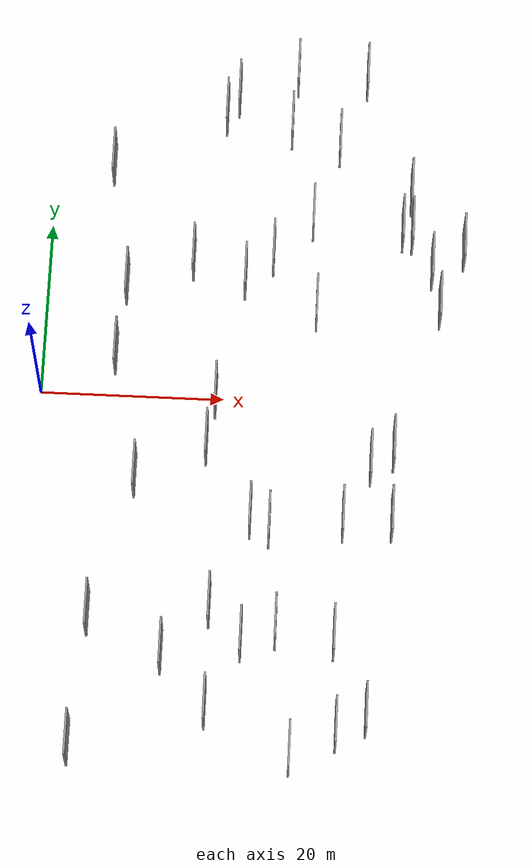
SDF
<sdf version="1.6">
 <world name="default">
  <scene>
   <sky><clouds><speed>12</speed></clouds></sky>
   <ambient>0.4 0.4 0.4 1</ambient>
   <background>0.7 0.7 0.7 1</background>
   <shadows>1</shadows>
  </scene>
  <gravity>0 0 -9.8066</gravity>
  <magnetic_field>6e-06 2.3e-05 -4.2e-05</magnetic_field>
  <physics default="0" name="default_physics" type="ode">
   <ode>
    <solver>
     <type>quick</type>
     <iters>10</iters>
     <sor>1.0</sor>
     <use_dynamic_moi_rescaling>0</use_dynamic_moi_rescaling>
    </solver>
    <constraints>
     <cfm>0</cfm>
     <erp>0.2</erp>
     <contact_max_correcting_vel>100</contact_max_correcting_vel>
     <contact_surface_layer>0.001</contact_surface_layer>
    </constraints>
   </ode>
   <max_step_size>0.004</max_step_size>
   <real_time_factor>1</real_time_factor>
   <real_time_update_rate>250</real_time_update_rate>
  </physics>
  <light name="sun" type="directional">
   <pose>0 0 10 0 0 0</pose>
   <diffuse>0.8 0.8 0.8 1</diffuse>
   <specular>0.2 0.2 0.2 1</specular>
   <attenuation>
    <range>1000</range>
    <constant>0.9</constant>
    <linear>0.01</linear>
    <quadratic>0.001</quadratic>
   </attenuation>
   <direction>-0.5 0.1 -0.9</direction>
  </light>
  <model name="grey_wall_1">
   <static>1</static>
   <pose>39.8599 25.4181 0.0 0.000000 0.000000 1.570796</pose>
   <link name="link">
    <pose>0 0 2.50 0 0 0</pose>
    <collision name="collision"><geometry><box><size>5.00 0.2 5.00</size></box></geometry></collision>
    <visual name="visual">
     <cast_shadows>0</cast_shadows>
     <geometry><box><size>5.00 0.2 5.00</size></box></geometry>
     <material>
      <script>
       <uri>model://grey_wall/materials/scripts</uri>
       <uri>model://grey_wall/materials/textures</uri>
       <name>vrc/grey_wall</name>
      </script>
     </material>
    </visual>
   </link>
  </model>
  <model name="grey_wall_2">
   <static>1</static>
   <pose>38.7077 -5.1640 0.0 0.000000 0.000000 1.570796</pose>
   <link name="link">
    <pose>0 0 2.50 0 0 0</pose>
    <collision name="collision"><geometry><box><size>5.00 0.2 5.00</size></box></geometry></collision>
    <visual name="visual">
     <cast_shadows>0</cast_shadows>
     <geometry><box><size>5.00 0.2 5.00</size></box></geometry>
     <material>
      <script>
       <uri>model://grey_wall/materials/scripts</uri>
       <uri>model://grey_wall/materials/textures</uri>
       <name>vrc/grey_wall</name>
      </script>
     </material>
    </visual>
   </link>
  </model>
  <model name="grey_wall_3">
   <static>1</static>
   <pose>26.2451 33.0878 0.0 0.000000 0.000000 1.570796</pose>
   <link name="link">
    <pose>0 0 2.50 0 0 0</pose>
    <collision name="collision"><geometry><box><size>5.00 0.2 5.00</size></box></geometry></collision>
    <visual name="visual">
     <cast_shadows>0</cast_shadows>
     <geometry><box><size>5.00 0.2 5.00</size></box></geometry>
     <material>
      <script>
       <uri>model://grey_wall/materials/scripts</uri>
       <uri>model://grey_wall/materials/textures</uri>
       <name>vrc/grey_wall</name>
      </script>
     </material>
    </visual>
   </link>
  </model>
  <model name="grey_wall_4">
   <static>1</static>
   <pose>28.7021 -39.4503 0.0 0.000000 0.000000 1.570796</pose>
   <link name="link">
    <pose>0 0 2.50 0 0 0</pose>
    <collision name="collision"><geometry><box><size>5.00 0.2 5.00</size></box></geometry></collision>
    <visual name="visual">
     <cast_shadows>0</cast_shadows>
     <geometry><box><size>5.00 0.2 5.00</size></box></geometry>
     <material>
      <script>
       <uri>model://grey_wall/materials/scripts</uri>
       <uri>model://grey_wall/materials/textures</uri>
       <name>vrc/grey_wall</name>
      </script>
     </material>
    </visual>
   </link>
  </model>
  <model name="grey_wall_5">
   <static>1</static>
   <pose>14.7106 -29.0027 0.0 0.000000 0.000000 1.570796</pose>
   <link name="link">
    <pose>0 0 2.50 0 0 0</pose>
    <collision name="collision"><geometry><box><size>5.00 0.2 5.00</size></box></geometry></collision>
    <visual name="visual">
     <cast_shadows>0</cast_shadows>
     <geometry><box><size>5.00 0.2 5.00</size></box></geometry>
     <material>
      <script>
       <uri>model://grey_wall/materials/scripts</uri>
       <uri>model://grey_wall/materials/textures</uri>
       <name>vrc/grey_wall</name>
      </script>
     </material>
    </visual>
   </link>
  </model>
  <model name="grey_wall_6">
   <static>1</static>
   <pose>33.4741 -36.6794 0.0 0.000000 0.000000 1.570796</pose>
   <link name="link">
    <pose>0 0 2.50 0 0 0</pose>
    <collision name="collision"><geometry><box><size>5.00 0.2 5.00</size></box></geometry></collision>
    <visual name="visual">
     <cast_shadows>0</cast_shadows>
     <geometry><box><size>5.00 0.2 5.00</size></box></geometry>
     <material>
      <script>
       <uri>model://grey_wall/materials/scripts</uri>
       <uri>model://grey_wall/materials/textures</uri>
       <name>vrc/grey_wall</name>
      </script>
     </material>
    </visual>
   </link>
  </model>
  <model name="grey_wall_7">
   <static>1</static>
   <pose>21.7800 14.4285 0.0 0.000000 0.000000 1.570796</pose>
   <link name="link">
    <pose>0 0 2.50 0 0 0</pose>
    <collision name="collision"><geometry><box><size>5.00 0.2 5.00</size></box></geometry></collision>
    <visual name="visual">
     <cast_shadows>0</cast_shadows>
     <geometry><box><size>5.00 0.2 5.00</size></box></geometry>
     <material>
      <script>
       <uri>model://grey_wall/materials/scripts</uri>
       <uri>model://grey_wall/materials/textures</uri>
       <name>vrc/grey_wall</name>
      </script>
     </material>
    </visual>
   </link>
  </model>
  <model name="grey_wall_8">
   <static>1</static>
   <pose>26.7249 -25.7648 0.0 0.000000 0.000000 1.570796</pose>
   <link name="link">
    <pose>0 0 2.50 0 0 0</pose>
    <collision name="collision"><geometry><box><size>5.00 0.2 5.00</size></box></geometry></collision>
    <visual name="visual">
     <cast_shadows>0</cast_shadows>
     <geometry><box><size>5.00 0.2 5.00</size></box></geometry>
     <material>
      <script>
       <uri>model://grey_wall/materials/scripts</uri>
       <uri>model://grey_wall/materials/textures</uri>
       <name>vrc/grey_wall</name>
      </script>
     </material>
    </visual>
   </link>
  </model>
  <model name="grey_wall_9">
   <static>1</static>
   <pose>6.6784 -25.0582 0.0 0.000000 0.000000 1.570796</pose>
   <link name="link">
    <pose>0 0 2.50 0 0 0</pose>
    <collision name="collision"><geometry><box><size>5.00 0.2 5.00</size></box></geometry></collision>
    <visual name="visual">
     <cast_shadows>0</cast_shadows>
     <geometry><box><size>5.00 0.2 5.00</size></box></geometry>
     <material>
      <script>
       <uri>model://grey_wall/materials/scripts</uri>
       <uri>model://grey_wall/materials/textures</uri>
       <name>vrc/grey_wall</name>
      </script>
     </material>
    </visual>
   </link>
  </model>
  <model name="grey_wall_10">
   <static>1</static>
   <pose>18.8569 34.4872 0.0 0.000000 0.000000 1.570796</pose>
   <link name="link">
    <pose>0 0 2.50 0 0 0</pose>
    <collision name="collision"><geometry><box><size>5.00 0.2 5.00</size></box></geometry></collision>
    <visual name="visual">
     <cast_shadows>0</cast_shadows>
     <geometry><box><size>5.00 0.2 5.00</size></box></geometry>
     <material>
      <script>
       <uri>model://grey_wall/materials/scripts</uri>
       <uri>model://grey_wall/materials/textures</uri>
       <name>vrc/grey_wall</name>
      </script>
     </material>
    </visual>
   </link>
  </model>
  <model name="grey_wall_11">
   <static>1</static>
   <pose>32.9555 -26.6926 0.0 0.000000 0.000000 1.570796</pose>
   <link name="link">
    <pose>0 0 2.50 0 0 0</pose>
    <collision name="collision"><geometry><box><size>5.00 0.2 5.00</size></box></geometry></collision>
    <visual name="visual">
     <cast_shadows>0</cast_shadows>
     <geometry><box><size>5.00 0.2 5.00</size></box></geometry>
     <material>
      <script>
       <uri>model://grey_wall/materials/scripts</uri>
       <uri>model://grey_wall/materials/textures</uri>
       <name>vrc/grey_wall</name>
      </script>
     </material>
    </visual>
   </link>
  </model>
  <model name="grey_wall_12">
   <static>1</static>
   <pose>36.2605 -6.9438 0.0 0.000000 0.000000 1.570796</pose>
   <link name="link">
    <pose>0 0 2.50 0 0 0</pose>
    <collision name="collision"><geometry><box><size>5.00 0.2 5.00</size></box></geometry></collision>
    <visual name="visual">
     <cast_shadows>0</cast_shadows>
     <geometry><box><size>5.00 0.2 5.00</size></box></geometry>
     <material>
      <script>
       <uri>model://grey_wall/materials/scripts</uri>
       <uri>model://grey_wall/materials/textures</uri>
       <name>vrc/grey_wall</name>
      </script>
     </material>
    </visual>
   </link>
  </model>
  <model name="grey_wall_13">
   <static>1</static>
   <pose>33.4704 -13.4290 0.0 0.000000 0.000000 1.570796</pose>
   <link name="link">
    <pose>0 0 2.50 0 0 0</pose>
    <collision name="collision"><geometry><box><size>5.00 0.2 5.00</size></box></geometry></collision>
    <visual name="visual">
     <cast_shadows>0</cast_shadows>
     <geometry><box><size>5.00 0.2 5.00</size></box></geometry>
     <material>
      <script>
       <uri>model://grey_wall/materials/scripts</uri>
       <uri>model://grey_wall/materials/textures</uri>
       <name>vrc/grey_wall</name>
      </script>
     </material>
    </visual>
   </link>
  </model>
  <model name="grey_wall_14">
   <static>1</static>
   <pose>26.6955 39.7175 0.0 0.000000 0.000000 1.570796</pose>
   <link name="link">
    <pose>0 0 2.50 0 0 0</pose>
    <collision name="collision"><geometry><box><size>5.00 0.2 5.00</size></box></geometry></collision>
    <visual name="visual">
     <cast_shadows>0</cast_shadows>
     <geometry><box><size>5.00 0.2 5.00</size></box></geometry>
     <material>
      <script>
       <uri>model://grey_wall/materials/scripts</uri>
       <uri>model://grey_wall/materials/textures</uri>
       <name>vrc/grey_wall</name>
      </script>
     </material>
    </visual>
   </link>
  </model>
  <model name="grey_wall_15">
   <static>1</static>
   <pose>31.6888 31.1160 0.0 0.000000 0.000000 1.570796</pose>
   <link name="link">
    <pose>0 0 2.50 0 0 0</pose>
    <collision name="collision"><geometry><box><size>5.00 0.2 5.00</size></box></geometry></collision>
    <visual name="visual">
     <cast_shadows>0</cast_shadows>
     <geometry><box><size>5.00 0.2 5.00</size></box></geometry>
     <material>
      <script>
       <uri>model://grey_wall/materials/scripts</uri>
       <uri>model://grey_wall/materials/textures</uri>
       <name>vrc/grey_wall</name>
      </script>
     </material>
    </visual>
   </link>
  </model>
  <model name="grey_wall_16">
   <static>1</static>
   <pose>18.4051 -5.2788 0.0 0.000000 0.000000 1.570796</pose>
   <link name="link">
    <pose>0 0 2.50 0 0 0</pose>
    <collision name="collision"><geometry><box><size>5.00 0.2 5.00</size></box></geometry></collision>
    <visual name="visual">
     <cast_shadows>0</cast_shadows>
     <geometry><box><size>5.00 0.2 5.00</size></box></geometry>
     <material>
      <script>
       <uri>model://grey_wall/materials/scripts</uri>
       <uri>model://grey_wall/materials/textures</uri>
       <name>vrc/grey_wall</name>
      </script>
     </material>
    </visual>
   </link>
  </model>
  <model name="grey_wall_17">
   <static>1</static>
   <pose>34.5211 39.5623 0.0 0.000000 0.000000 1.570796</pose>
   <link name="link">
    <pose>0 0 2.50 0 0 0</pose>
    <collision name="collision"><geometry><box><size>5.00 0.2 5.00</size></box></geometry></collision>
    <visual name="visual">
     <cast_shadows>0</cast_shadows>
     <geometry><box><size>5.00 0.2 5.00</size></box></geometry>
     <material>
      <script>
       <uri>model://grey_wall/materials/scripts</uri>
       <uri>model://grey_wall/materials/textures</uri>
       <name>vrc/grey_wall</name>
      </script>
     </material>
    </visual>
   </link>
  </model>
  <model name="grey_wall_18">
   <static>1</static>
   <pose>23.4957 -13.4753 0.0 0.000000 0.000000 1.570796</pose>
   <link name="link">
    <pose>0 0 2.50 0 0 0</pose>
    <collision name="collision"><geometry><box><size>5.00 0.2 5.00</size></box></geometry></collision>
    <visual name="visual">
     <cast_shadows>0</cast_shadows>
     <geometry><box><size>5.00 0.2 5.00</size></box></geometry>
     <material>
      <script>
       <uri>model://grey_wall/materials/scripts</uri>
       <uri>model://grey_wall/materials/textures</uri>
       <name>vrc/grey_wall</name>
      </script>
     </material>
    </visual>
   </link>
  </model>
  <model name="grey_wall_19">
   <static>1</static>
   <pose>29.0298 21.8526 0.0 0.000000 0.000000 1.570796</pose>
   <link name="link">
    <pose>0 0 2.50 0 0 0</pose>
    <collision name="collision"><geometry><box><size>5.00 0.2 5.00</size></box></geometry></collision>
    <visual name="visual">
     <cast_shadows>0</cast_shadows>
     <geometry><box><size>5.00 0.2 5.00</size></box></geometry>
     <material>
      <script>
       <uri>model://grey_wall/materials/scripts</uri>
       <uri>model://grey_wall/materials/textures</uri>
       <name>vrc/grey_wall</name>
      </script>
     </material>
    </visual>
   </link>
  </model>
  <model name="grey_wall_20">
   <static>1</static>
   <pose>19.5828 -23.6909 0.0 0.000000 0.000000 1.570796</pose>
   <link name="link">
    <pose>0 0 2.50 0 0 0</pose>
    <collision name="collision"><geometry><box><size>5.00 0.2 5.00</size></box></geometry></collision>
    <visual name="visual">
     <cast_shadows>0</cast_shadows>
     <geometry><box><size>5.00 0.2 5.00</size></box></geometry>
     <material>
      <script>
       <uri>model://grey_wall/materials/scripts</uri>
       <uri>model://grey_wall/materials/textures</uri>
       <name>vrc/grey_wall</name>
      </script>
     </material>
    </visual>
   </link>
  </model>
  <model name="grey_wall_21">
   <static>1</static>
   <pose>19.6270 -34.7975 0.0 0.000000 0.000000 1.570796</pose>
   <link name="link">
    <pose>0 0 2.50 0 0 0</pose>
    <collision name="collision"><geometry><box><size>5.00 0.2 5.00</size></box></geometry></collision>
    <visual name="visual">
     <cast_shadows>0</cast_shadows>
     <geometry><box><size>5.00 0.2 5.00</size></box></geometry>
     <material>
      <script>
       <uri>model://grey_wall/materials/scripts</uri>
       <uri>model://grey_wall/materials/textures</uri>
       <name>vrc/grey_wall</name>
      </script>
     </material>
    </visual>
   </link>
  </model>
  <model name="grey_wall_22">
   <static>1</static>
   <pose>24.7822 17.3534 0.0 0.000000 0.000000 1.570796</pose>
   <link name="link">
    <pose>0 0 2.50 0 0 0</pose>
    <collision name="collision"><geometry><box><size>5.00 0.2 5.00</size></box></geometry></collision>
    <visual name="visual">
     <cast_shadows>0</cast_shadows>
     <geometry><box><size>5.00 0.2 5.00</size></box></geometry>
     <material>
      <script>
       <uri>model://grey_wall/materials/scripts</uri>
       <uri>model://grey_wall/materials/textures</uri>
       <name>vrc/grey_wall</name>
      </script>
     </material>
    </visual>
   </link>
  </model>
  <model name="grey_wall_23">
   <static>1</static>
   <pose>15.9523 16.4807 0.0 0.000000 0.000000 1.570796</pose>
   <link name="link">
    <pose>0 0 2.50 0 0 0</pose>
    <collision name="collision"><geometry><box><size>5.00 0.2 5.00</size></box></geometry></collision>
    <visual name="visual">
     <cast_shadows>0</cast_shadows>
     <geometry><box><size>5.00 0.2 5.00</size></box></geometry>
     <material>
      <script>
       <uri>model://grey_wall/materials/scripts</uri>
       <uri>model://grey_wall/materials/textures</uri>
       <name>vrc/grey_wall</name>
      </script>
     </material>
    </visual>
   </link>
  </model>
  <model name="grey_wall_24">
   <static>1</static>
   <pose>42.3539 16.4638 0.0 0.000000 0.000000 1.570796</pose>
   <link name="link">
    <pose>0 0 2.50 0 0 0</pose>
    <collision name="collision"><geometry><box><size>5.00 0.2 5.00</size></box></geometry></collision>
    <visual name="visual">
     <cast_shadows>0</cast_shadows>
     <geometry><box><size>5.00 0.2 5.00</size></box></geometry>
     <material>
      <script>
       <uri>model://grey_wall/materials/scripts</uri>
       <uri>model://grey_wall/materials/textures</uri>
       <name>vrc/grey_wall</name>
      </script>
     </material>
    </visual>
   </link>
  </model>
  <model name="grey_wall_25">
   <static>1</static>
   <pose>8.7243 13.2373 0.0 0.000000 0.000000 1.570796</pose>
   <link name="link">
    <pose>0 0 2.50 0 0 0</pose>
    <collision name="collision"><geometry><box><size>5.00 0.2 5.00</size></box></geometry></collision>
    <visual name="visual">
     <cast_shadows>0</cast_shadows>
     <geometry><box><size>5.00 0.2 5.00</size></box></geometry>
     <material>
      <script>
       <uri>model://grey_wall/materials/scripts</uri>
       <uri>model://grey_wall/materials/textures</uri>
       <name>vrc/grey_wall</name>
      </script>
     </material>
    </visual>
   </link>
  </model>
  <model name="grey_wall_26">
   <static>1</static>
   <pose>19.1493 0.1953 0.0 0.000000 0.000000 1.570796</pose>
   <link name="link">
    <pose>0 0 2.50 0 0 0</pose>
    <collision name="collision"><geometry><box><size>5.00 0.2 5.00</size></box></geometry></collision>
    <visual name="visual">
     <cast_shadows>0</cast_shadows>
     <geometry><box><size>5.00 0.2 5.00</size></box></geometry>
     <material>
      <script>
       <uri>model://grey_wall/materials/scripts</uri>
       <uri>model://grey_wall/materials/textures</uri>
       <name>vrc/grey_wall</name>
      </script>
     </material>
    </visual>
   </link>
  </model>
  <model name="grey_wall_27">
   <static>1</static>
   <pose>20.1574 36.8348 0.0 0.000000 0.000000 1.570796</pose>
   <link name="link">
    <pose>0 0 2.50 0 0 0</pose>
    <collision name="collision"><geometry><box><size>5.00 0.2 5.00</size></box></geometry></collision>
    <visual name="visual">
     <cast_shadows>0</cast_shadows>
     <geometry><box><size>5.00 0.2 5.00</size></box></geometry>
     <material>
      <script>
       <uri>model://grey_wall/materials/scripts</uri>
       <uri>model://grey_wall/materials/textures</uri>
       <name>vrc/grey_wall</name>
      </script>
     </material>
    </visual>
   </link>
  </model>
  <model name="grey_wall_28">
   <static>1</static>
   <pose>7.9740 4.8975 0.0 0.000000 0.000000 1.570796</pose>
   <link name="link">
    <pose>0 0 2.50 0 0 0</pose>
    <collision name="collision"><geometry><box><size>5.00 0.2 5.00</size></box></geometry></collision>
    <visual name="visual">
     <cast_shadows>0</cast_shadows>
     <geometry><box><size>5.00 0.2 5.00</size></box></geometry>
     <material>
      <script>
       <uri>model://grey_wall/materials/scripts</uri>
       <uri>model://grey_wall/materials/textures</uri>
       <name>vrc/grey_wall</name>
      </script>
     </material>
    </visual>
   </link>
  </model>
  <model name="grey_wall_29">
   <static>1</static>
   <pose>23.0907 -27.2850 0.0 0.000000 0.000000 1.570796</pose>
   <link name="link">
    <pose>0 0 2.50 0 0 0</pose>
    <collision name="collision"><geometry><box><size>5.00 0.2 5.00</size></box></geometry></collision>
    <visual name="visual">
     <cast_shadows>0</cast_shadows>
     <geometry><box><size>5.00 0.2 5.00</size></box></geometry>
     <material>
      <script>
       <uri>model://grey_wall/materials/scripts</uri>
       <uri>model://grey_wall/materials/textures</uri>
       <name>vrc/grey_wall</name>
      </script>
     </material>
    </visual>
   </link>
  </model>
  <model name="grey_wall_30">
   <static>1</static>
   <pose>25.5835 -14.4208 0.0 0.000000 0.000000 1.570796</pose>
   <link name="link">
    <pose>0 0 2.50 0 0 0</pose>
    <collision name="collision"><geometry><box><size>5.00 0.2 5.00</size></box></geometry></collision>
    <visual name="visual">
     <cast_shadows>0</cast_shadows>
     <geometry><box><size>5.00 0.2 5.00</size></box></geometry>
     <material>
      <script>
       <uri>model://grey_wall/materials/scripts</uri>
       <uri>model://grey_wall/materials/textures</uri>
       <name>vrc/grey_wall</name>
      </script>
     </material>
    </visual>
   </link>
  </model>
  <model name="grey_wall_31">
   <static>1</static>
   <pose>36.5977 -34.9653 0.0 0.000000 0.000000 1.570796</pose>
   <link name="link">
    <pose>0 0 2.50 0 0 0</pose>
    <collision name="collision"><geometry><box><size>5.00 0.2 5.00</size></box></geometry></collision>
    <visual name="visual">
     <cast_shadows>0</cast_shadows>
     <geometry><box><size>5.00 0.2 5.00</size></box></geometry>
     <material>
      <script>
       <uri>model://grey_wall/materials/scripts</uri>
       <uri>model://grey_wall/materials/textures</uri>
       <name>vrc/grey_wall</name>
      </script>
     </material>
    </visual>
   </link>
  </model>
  <model name="grey_wall_32">
   <static>1</static>
   <pose>29.7608 10.9643 0.0 0.000000 0.000000 1.570796</pose>
   <link name="link">
    <pose>0 0 2.50 0 0 0</pose>
    <collision name="collision"><geometry><box><size>5.00 0.2 5.00</size></box></geometry></collision>
    <visual name="visual">
     <cast_shadows>0</cast_shadows>
     <geometry><box><size>5.00 0.2 5.00</size></box></geometry>
     <material>
      <script>
       <uri>model://grey_wall/materials/scripts</uri>
       <uri>model://grey_wall/materials/textures</uri>
       <name>vrc/grey_wall</name>
      </script>
     </material>
    </visual>
   </link>
  </model>
  <model name="grey_wall_33">
   <static>1</static>
   <pose>6.4875 27.7052 0.0 0.000000 0.000000 1.570796</pose>
   <link name="link">
    <pose>0 0 2.50 0 0 0</pose>
    <collision name="collision"><geometry><box><size>5.00 0.2 5.00</size></box></geometry></collision>
    <visual name="visual">
     <cast_shadows>0</cast_shadows>
     <geometry><box><size>5.00 0.2 5.00</size></box></geometry>
     <material>
      <script>
       <uri>model://grey_wall/materials/scripts</uri>
       <uri>model://grey_wall/materials/textures</uri>
       <name>vrc/grey_wall</name>
      </script>
     </material>
    </visual>
   </link>
  </model>
  <model name="grey_wall_34">
   <static>1</static>
   <pose>40.0632 20.6979 0.0 0.000000 0.000000 1.570796</pose>
   <link name="link">
    <pose>0 0 2.50 0 0 0</pose>
    <collision name="collision"><geometry><box><size>5.00 0.2 5.00</size></box></geometry></collision>
    <visual name="visual">
     <cast_shadows>0</cast_shadows>
     <geometry><box><size>5.00 0.2 5.00</size></box></geometry>
     <material>
      <script>
       <uri>model://grey_wall/materials/scripts</uri>
       <uri>model://grey_wall/materials/textures</uri>
       <name>vrc/grey_wall</name>
      </script>
     </material>
    </visual>
   </link>
  </model>
  <model name="grey_wall_35">
   <static>1</static>
   <pose>43.3226 11.8094 0.0 0.000000 0.000000 1.570796</pose>
   <link name="link">
    <pose>0 0 2.50 0 0 0</pose>
    <collision name="collision"><geometry><box><size>5.00 0.2 5.00</size></box></geometry></collision>
    <visual name="visual">
     <cast_shadows>0</cast_shadows>
     <geometry><box><size>5.00 0.2 5.00</size></box></geometry>
     <material>
      <script>
       <uri>model://grey_wall/materials/scripts</uri>
       <uri>model://grey_wall/materials/textures</uri>
       <name>vrc/grey_wall</name>
      </script>
     </material>
    </visual>
   </link>
  </model>
  <model name="grey_wall_36">
   <static>1</static>
   <pose>45.8292 18.8973 0.0 0.000000 0.000000 1.570796</pose>
   <link name="link">
    <pose>0 0 2.50 0 0 0</pose>
    <collision name="collision"><geometry><box><size>5.00 0.2 5.00</size></box></geometry></collision>
    <visual name="visual">
     <cast_shadows>0</cast_shadows>
     <geometry><box><size>5.00 0.2 5.00</size></box></geometry>
     <material>
      <script>
       <uri>model://grey_wall/materials/scripts</uri>
       <uri>model://grey_wall/materials/textures</uri>
       <name>vrc/grey_wall</name>
      </script>
     </material>
    </visual>
   </link>
  </model>
  <model name="grey_wall_37">
   <static>1</static>
   <pose>5.4716 -39.2524 0.0 0.000000 0.000000 1.570796</pose>
   <link name="link">
    <pose>0 0 2.50 0 0 0</pose>
    <collision name="collision"><geometry><box><size>5.00 0.2 5.00</size></box></geometry></collision>
    <visual name="visual">
     <cast_shadows>0</cast_shadows>
     <geometry><box><size>5.00 0.2 5.00</size></box></geometry>
     <material>
      <script>
       <uri>model://grey_wall/materials/scripts</uri>
       <uri>model://grey_wall/materials/textures</uri>
       <name>vrc/grey_wall</name>
      </script>
     </material>
    </visual>
   </link>
  </model>
  <model name="grey_wall_38">
   <static>1</static>
   <pose>38.7293 -13.1994 0.0 0.000000 0.000000 1.570796</pose>
   <link name="link">
    <pose>0 0 2.50 0 0 0</pose>
    <collision name="collision"><geometry><box><size>5.00 0.2 5.00</size></box></geometry></collision>
    <visual name="visual">
     <cast_shadows>0</cast_shadows>
     <geometry><box><size>5.00 0.2 5.00</size></box></geometry>
     <material>
      <script>
       <uri>model://grey_wall/materials/scripts</uri>
       <uri>model://grey_wall/materials/textures</uri>
       <name>vrc/grey_wall</name>
      </script>
     </material>
    </visual>
   </link>
  </model>
  <model name="grey_wall_39">
   <static>1</static>
   <pose>10.8115 -9.2956 0.0 0.000000 0.000000 1.570796</pose>
   <link name="link">
    <pose>0 0 2.50 0 0 0</pose>
    <collision name="collision"><geometry><box><size>5.00 0.2 5.00</size></box></geometry></collision>
    <visual name="visual">
     <cast_shadows>0</cast_shadows>
     <geometry><box><size>5.00 0.2 5.00</size></box></geometry>
     <material>
      <script>
       <uri>model://grey_wall/materials/scripts</uri>
       <uri>model://grey_wall/materials/textures</uri>
       <name>vrc/grey_wall</name>
      </script>
     </material>
    </visual>
   </link>
  </model>
  <model name="grey_wall_40">
   <static>1</static>
   <pose>38.9955 20.9362 0.0 0.000000 0.000000 1.570796</pose>
   <link name="link">
    <pose>0 0 2.50 0 0 0</pose>
    <collision name="collision"><geometry><box><size>5.00 0.2 5.00</size></box></geometry></collision>
    <visual name="visual">
     <cast_shadows>0</cast_shadows>
     <geometry><box><size>5.00 0.2 5.00</size></box></geometry>
     <material>
      <script>
       <uri>model://grey_wall/materials/scripts</uri>
       <uri>model://grey_wall/materials/textures</uri>
       <name>vrc/grey_wall</name>
      </script>
     </material>
    </visual>
   </link>
  </model>
 </world>
</sdf>
